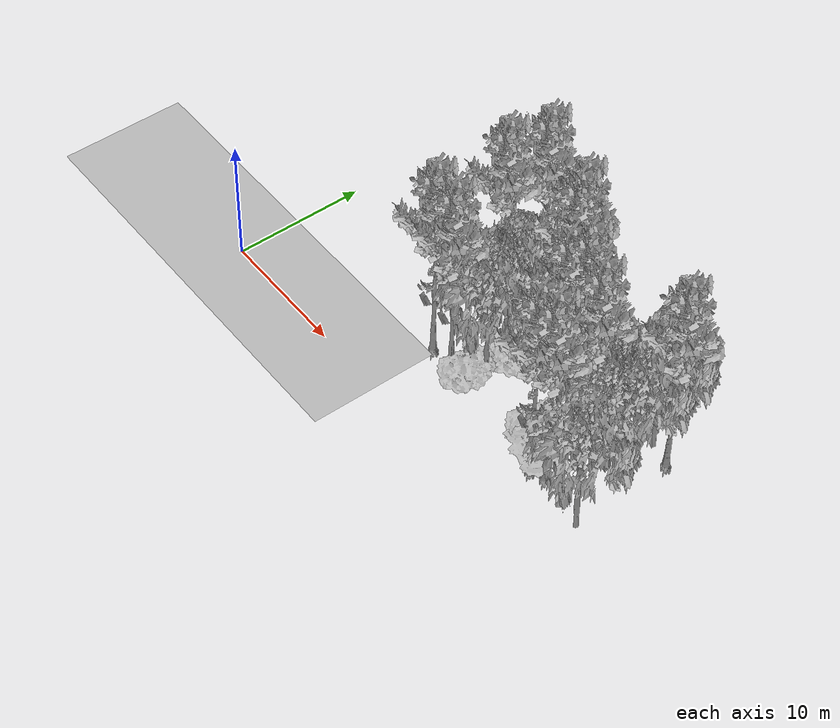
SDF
<sdf version="1.7">
 <world name="default">
  <model name="ground_plane">
   <static>1</static>
   <link name="link">
    <collision name="collision">
     <pose>-50 0 0 0 -0 0</pose>
     <geometry><plane><normal>0 0 1</normal><size>100 100</size></plane></geometry>
     <surface><contact><ode><min_depth>0.01</min_depth><max_vel>0</max_vel></ode></contact></surface>
    </collision>
    <visual name="grass">
     <cast_shadows>0</cast_shadows>
     <geometry>
      <mesh>
       <scale>0.5814285714285714 0.18142857142857144 0.1</scale>
       <uri>file://grass_plane/meshes/grass_plane.dae</uri>
      </mesh>
     </geometry>
    </visual>
   </link>
  </model>
  <model name="Tree 4">
   <static>1</static>
   <pose>30.447506198943657 11.661409019670593 0 1.57079 -0 0</pose>
   <link name="link">
    <collision name="collision">
     <geometry><mesh><scale>3.5 5 3.5</scale><uri>model://tree_2/meshes/tree_2.obj</uri></mesh></geometry>
    </collision>
    <visual name="visual">
     <geometry><mesh><scale>3.5 5 3.5</scale><uri>model://tree_2/meshes/tree_2.obj</uri></mesh></geometry>
    </visual>
   </link>
  </model>
  <model name="Tree 20">
   <static>1</static>
   <pose>19.296432104810023 6.59171631181357 0 1.57079 -0 0</pose>
   <link name="link">
    <collision name="collision">
     <geometry><mesh><scale>3.5 5 3.5</scale><uri>model://tree_2/meshes/tree_2.obj</uri></mesh></geometry>
    </collision>
    <visual name="visual">
     <geometry><mesh><scale>3.5 5 3.5</scale><uri>model://tree_2/meshes/tree_2.obj</uri></mesh></geometry>
    </visual>
   </link>
  </model>
  <model name="Tree 29">
   <static>1</static>
   <pose>28.02088922435273 8.154617963496953 0 1.57079 -0 0</pose>
   <link name="link">
    <collision name="collision">
     <geometry><mesh><scale>3.5 5 3.5</scale><uri>model://tree_9/meshes/tree_9.obj</uri></mesh></geometry>
    </collision>
    <visual name="visual">
     <geometry><mesh><scale>3.5 5 3.5</scale><uri>model://tree_9/meshes/tree_9.obj</uri></mesh></geometry>
    </visual>
   </link>
  </model>
  <model name="Tree 30">
   <static>1</static>
   <pose>14.977765230170178 11.383427615621763 0 1.57079 -0 0</pose>
   <link name="link">
    <collision name="collision">
     <geometry><mesh><scale>3.5 5 3.5</scale><uri>model://tree_9/meshes/tree_9.obj</uri></mesh></geometry>
    </collision>
    <visual name="visual">
     <geometry><mesh><scale>3.5 5 3.5</scale><uri>model://tree_9/meshes/tree_9.obj</uri></mesh></geometry>
    </visual>
   </link>
  </model>
  <model name="Tree 33">
   <static>1</static>
   <pose>19.280507609140912 12.06761423302585 0 1.57079 -0 0</pose>
   <link name="link">
    <collision name="collision">
     <geometry><mesh><scale>3 2 3</scale><uri>model://tree_3/meshes/tree_3.obj</uri></mesh></geometry>
    </collision>
    <visual name="visual">
     <geometry><mesh><scale>3 2 3</scale><uri>model://tree_3/meshes/tree_3.obj</uri></mesh></geometry>
    </visual>
   </link>
  </model>
  <model name="Tree 35">
   <static>1</static>
   <pose>21.411897617493352 11.835976100499238 0 1.57079 -0 0</pose>
   <link name="link">
    <collision name="collision">
     <geometry><mesh><scale>3.5 5 3.5</scale><uri>model://tree_9/meshes/tree_9.obj</uri></mesh></geometry>
    </collision>
    <visual name="visual">
     <geometry><mesh><scale>3.5 5 3.5</scale><uri>model://tree_9/meshes/tree_9.obj</uri></mesh></geometry>
    </visual>
   </link>
  </model>
  <model name="Tree 73">
   <static>1</static>
   <pose>30.117635642744986 7.994893495576935 0 1.57079 -0 0</pose>
   <link name="link">
    <collision name="collision">
     <geometry><mesh><scale>3.5 5 3.5</scale><uri>model://tree_2/meshes/tree_2.obj</uri></mesh></geometry>
    </collision>
    <visual name="visual">
     <geometry><mesh><scale>3.5 5 3.5</scale><uri>model://tree_2/meshes/tree_2.obj</uri></mesh></geometry>
    </visual>
   </link>
  </model>
  <model name="Tree 100">
   <static>1</static>
   <pose>25.259581943214727 9.477707426225418 0 1.57079 -0 0</pose>
   <link name="link">
    <collision name="collision">
     <geometry><mesh><scale>3.5 5 3.5</scale><uri>model://tree_9/meshes/tree_9.obj</uri></mesh></geometry>
    </collision>
    <visual name="visual">
     <geometry><mesh><scale>3.5 5 3.5</scale><uri>model://tree_9/meshes/tree_9.obj</uri></mesh></geometry>
    </visual>
   </link>
  </model>
  <model name="Tree 112">
   <static>1</static>
   <pose>17.3227365304071 5.210226313677538 0 1.57079 -0 0</pose>
   <link name="link">
    <collision name="collision">
     <geometry><mesh><scale>3.5 5 3.5</scale><uri>model://tree_9/meshes/tree_9.obj</uri></mesh></geometry>
    </collision>
    <visual name="visual">
     <geometry><mesh><scale>3.5 5 3.5</scale><uri>model://tree_9/meshes/tree_9.obj</uri></mesh></geometry>
    </visual>
   </link>
  </model>
  <model name="Tree 123">
   <static>1</static>
   <pose>29.855064915653614 8.261523869515013 0 1.57079 -0 0</pose>
   <link name="link">
    <collision name="collision">
     <geometry><mesh><scale>3.5 5 3.5</scale><uri>model://tree_2/meshes/tree_2.obj</uri></mesh></geometry>
    </collision>
    <visual name="visual">
     <geometry><mesh><scale>3.5 5 3.5</scale><uri>model://tree_2/meshes/tree_2.obj</uri></mesh></geometry>
    </visual>
   </link>
  </model>
  <model name="Tree 133">
   <static>1</static>
   <pose>26.927203463168 4.41975562830002 0 1.57079 -0 0</pose>
   <link name="link">
    <collision name="collision">
     <geometry><mesh><scale>3 2 3</scale><uri>model://tree_3/meshes/tree_3.obj</uri></mesh></geometry>
    </collision>
    <visual name="visual">
     <geometry><mesh><scale>3 2 3</scale><uri>model://tree_3/meshes/tree_3.obj</uri></mesh></geometry>
    </visual>
   </link>
  </model>
  <model name="Tree 135">
   <static>1</static>
   <pose>32.40273966068867 3.3826632991941494 0 1.57079 -0 0</pose>
   <link name="link">
    <collision name="collision">
     <geometry><mesh><scale>3.5 5 3.5</scale><uri>model://tree_2/meshes/tree_2.obj</uri></mesh></geometry>
    </collision>
    <visual name="visual">
     <geometry><mesh><scale>3.5 5 3.5</scale><uri>model://tree_2/meshes/tree_2.obj</uri></mesh></geometry>
    </visual>
   </link>
  </model>
  <model name="Tree 139">
   <static>1</static>
   <pose>24.14483683817403 13.017420805670042 0 1.57079 -0 0</pose>
   <link name="link">
    <collision name="collision">
     <geometry><mesh><scale>3 2 3</scale><uri>model://tree_3/meshes/tree_3.obj</uri></mesh></geometry>
    </collision>
    <visual name="visual">
     <geometry><mesh><scale>3 2 3</scale><uri>model://tree_3/meshes/tree_3.obj</uri></mesh></geometry>
    </visual>
   </link>
  </model>
  <model name="Tree 173">
   <static>1</static>
   <pose>28.39724164458903 4.212604031910814 0 1.57079 -0 0</pose>
   <link name="link">
    <collision name="collision">
     <geometry><mesh><scale>3.5 5 3.5</scale><uri>model://tree_9/meshes/tree_9.obj</uri></mesh></geometry>
    </collision>
    <visual name="visual">
     <geometry><mesh><scale>3.5 5 3.5</scale><uri>model://tree_9/meshes/tree_9.obj</uri></mesh></geometry>
    </visual>
   </link>
  </model>
  <model name="Tree 178">
   <static>1</static>
   <pose>27.275603902944 3.8716448212107224 0 1.57079 -0 0</pose>
   <link name="link">
    <collision name="collision">
     <geometry><mesh><scale>3.5 5 3.5</scale><uri>model://tree_9/meshes/tree_9.obj</uri></mesh></geometry>
    </collision>
    <visual name="visual">
     <geometry><mesh><scale>3.5 5 3.5</scale><uri>model://tree_9/meshes/tree_9.obj</uri></mesh></geometry>
    </visual>
   </link>
  </model>
  <model name="Tree 183">
   <static>1</static>
   <pose>15.28281423747626 5.266142815797835 0 1.57079 -0 0</pose>
   <link name="link">
    <collision name="collision">
     <geometry><mesh><scale>3.5 5 3.5</scale><uri>model://tree_9/meshes/tree_9.obj</uri></mesh></geometry>
    </collision>
    <visual name="visual">
     <geometry><mesh><scale>3.5 5 3.5</scale><uri>model://tree_9/meshes/tree_9.obj</uri></mesh></geometry>
    </visual>
   </link>
  </model>
  <model name="Tree 190">
   <static>1</static>
   <pose>20.860173831890293 12.834344192706883 0 1.57079 -0 0</pose>
   <link name="link">
    <collision name="collision">
     <geometry><mesh><scale>3.5 5 3.5</scale><uri>model://tree_9/meshes/tree_9.obj</uri></mesh></geometry>
    </collision>
    <visual name="visual">
     <geometry><mesh><scale>3.5 5 3.5</scale><uri>model://tree_9/meshes/tree_9.obj</uri></mesh></geometry>
    </visual>
   </link>
  </model>
  <model name="Tree 199">
   <static>1</static>
   <pose>31.243683553400672 8.959950695535007 0 1.57079 -0 0</pose>
   <link name="link">
    <collision name="collision">
     <geometry><mesh><scale>3.5 5 3.5</scale><uri>model://tree_2/meshes/tree_2.obj</uri></mesh></geometry>
    </collision>
    <visual name="visual">
     <geometry><mesh><scale>3.5 5 3.5</scale><uri>model://tree_2/meshes/tree_2.obj</uri></mesh></geometry>
    </visual>
   </link>
  </model>
  <model name="Tree 211">
   <static>1</static>
   <pose>25.02440441977768 6.102642350249187 0 1.57079 -0 0</pose>
   <link name="link">
    <collision name="collision">
     <geometry><mesh><scale>4 2.5 4</scale><uri>model://tree_1/meshes/tree_1.obj</uri></mesh></geometry>
    </collision>
    <visual name="visual">
     <geometry><mesh><scale>4 2.5 4</scale><uri>model://tree_1/meshes/tree_1.obj</uri></mesh></geometry>
    </visual>
   </link>
  </model>
  <model name="Tree 214">
   <static>1</static>
   <pose>19.63666656506578 9.008521096029348 0 1.57079 -0 0</pose>
   <link name="link">
    <collision name="collision">
     <geometry><mesh><scale>4 2.5 4</scale><uri>model://tree_1/meshes/tree_1.obj</uri></mesh></geometry>
    </collision>
    <visual name="visual">
     <geometry><mesh><scale>4 2.5 4</scale><uri>model://tree_1/meshes/tree_1.obj</uri></mesh></geometry>
    </visual>
   </link>
  </model>
  <model name="Tree 229">
   <static>1</static>
   <pose>32.28021919268602 11.247952439023514 0 1.57079 -0 0</pose>
   <link name="link">
    <collision name="collision">
     <geometry><mesh><scale>3.5 5 3.5</scale><uri>model://tree_9/meshes/tree_9.obj</uri></mesh></geometry>
    </collision>
    <visual name="visual">
     <geometry><mesh><scale>3.5 5 3.5</scale><uri>model://tree_9/meshes/tree_9.obj</uri></mesh></geometry>
    </visual>
   </link>
  </model>
  <model name="Tree 245">
   <static>1</static>
   <pose>18.225768572377348 9.13350768501791 0 1.57079 -0 0</pose>
   <link name="link">
    <collision name="collision">
     <geometry><mesh><scale>3.5 5 3.5</scale><uri>model://tree_2/meshes/tree_2.obj</uri></mesh></geometry>
    </collision>
    <visual name="visual">
     <geometry><mesh><scale>3.5 5 3.5</scale><uri>model://tree_2/meshes/tree_2.obj</uri></mesh></geometry>
    </visual>
   </link>
  </model>
  <model name="Tree 255">
   <static>1</static>
   <pose>15.765058607359478 14.216956387561616 0 1.57079 -0 0</pose>
   <link name="link">
    <collision name="collision">
     <geometry><mesh><scale>3.5 5 3.5</scale><uri>model://tree_9/meshes/tree_9.obj</uri></mesh></geometry>
    </collision>
    <visual name="visual">
     <geometry><mesh><scale>3.5 5 3.5</scale><uri>model://tree_9/meshes/tree_9.obj</uri></mesh></geometry>
    </visual>
   </link>
  </model>
  <model name="Tree 258">
   <static>1</static>
   <pose>18.714365440286926 5.372626398175701 0 1.57079 -0 0</pose>
   <link name="link">
    <collision name="collision">
     <geometry><mesh><scale>4 2.5 4</scale><uri>model://tree_1/meshes/tree_1.obj</uri></mesh></geometry>
    </collision>
    <visual name="visual">
     <geometry><mesh><scale>4 2.5 4</scale><uri>model://tree_1/meshes/tree_1.obj</uri></mesh></geometry>
    </visual>
   </link>
  </model>
  <model name="Tree 278">
   <static>1</static>
   <pose>24.786551062649224 8.322340938885958 0 1.57079 -0 0</pose>
   <link name="link">
    <collision name="collision">
     <geometry><mesh><scale>3.5 5 3.5</scale><uri>model://tree_9/meshes/tree_9.obj</uri></mesh></geometry>
    </collision>
    <visual name="visual">
     <geometry><mesh><scale>3.5 5 3.5</scale><uri>model://tree_9/meshes/tree_9.obj</uri></mesh></geometry>
    </visual>
   </link>
  </model>
  <model name="Tree 292">
   <static>1</static>
   <pose>18.592900839329815 9.088638682396695 0 1.57079 -0 0</pose>
   <link name="link">
    <collision name="collision">
     <geometry><mesh><scale>3.5 5 3.5</scale><uri>model://tree_2/meshes/tree_2.obj</uri></mesh></geometry>
    </collision>
    <visual name="visual">
     <geometry><mesh><scale>3.5 5 3.5</scale><uri>model://tree_2/meshes/tree_2.obj</uri></mesh></geometry>
    </visual>
   </link>
  </model>
 </world>
</sdf>
